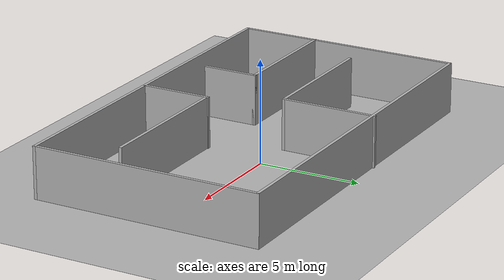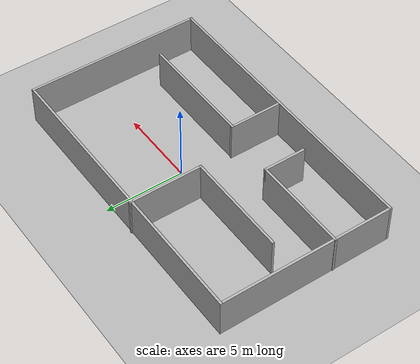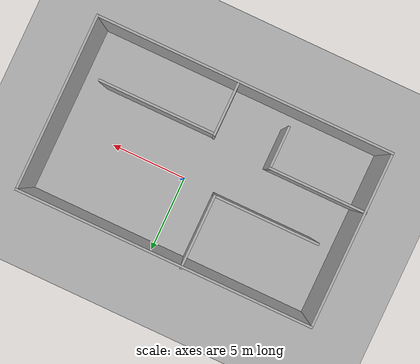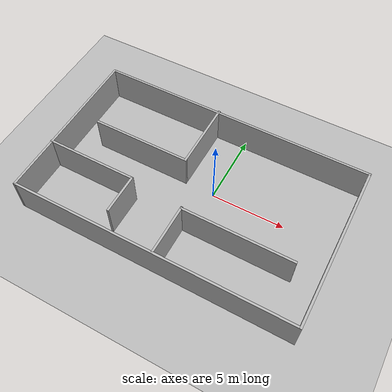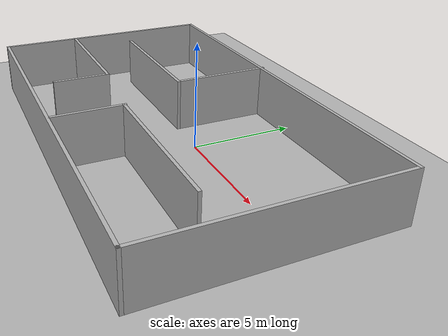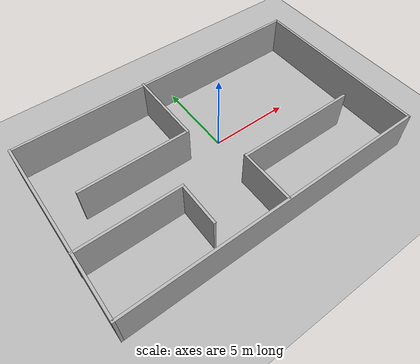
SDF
<sdf version='1.8'>
  <world name='default'>
    <light name='sun' type='directional'>
      <cast_shadows>1</cast_shadows>
      <pose>0 0 10 0 -0 0</pose>
      <diffuse>0.8 0.8 0.8 1</diffuse>
      <specular>0.2 0.2 0.2 1</specular>
      <attenuation>
        <range>1000</range>
        <constant>0.9</constant>
        <linear>0.01</linear>
        <quadratic>0.001</quadratic>
      </attenuation>
      <direction>-0.5 0.1 -0.9</direction>
      <spot>
        <inner_angle>0</inner_angle>
        <outer_angle>0</outer_angle>
        <falloff>0</falloff>
      </spot>
    </light>
    <model name='ground_plane'>
      <static>1</static>
      <link name='link'>
        <collision name='collision'>
          <geometry>
            <plane>
              <normal>0 0 1</normal>
              <size>100 100</size>
            </plane>
          </geometry>
          <surface>
            <friction>
              <ode>
                <mu>100</mu>
                <mu2>50</mu2>
              </ode>
              <torsional>
                <ode/>
              </torsional>
            </friction>
            <contact>
              <ode/>
            </contact>
            <bounce/>
          </surface>
          <max_contacts>10</max_contacts>
        </collision>
        <visual name='visual'>
          <cast_shadows>0</cast_shadows>
          <geometry>
            <plane>
              <normal>0 0 1</normal>
              <size>100 100</size>
            </plane>
          </geometry>
          <material>
            <ambient>0.3 0.3 0.3 1</ambient>
            <diffuse>0.7 0.7 0.7 1</diffuse>
            <specular>0.1 0.1 0.1 1</specular>
          </material>
        </visual>
        <self_collide>0</self_collide>
        <enable_wind>0</enable_wind>
        <kinematic>0</kinematic>
      </link>
    </model>
    <gravity>0 0 -9.8</gravity>
    <magnetic_field>6e-06 2.3e-05 -4.2e-05</magnetic_field>
    <atmosphere type='adiabatic'/>
    <physics type='ode'>
      <max_step_size>0.001</max_step_size>
      <real_time_factor>1</real_time_factor>
      <real_time_update_rate>1000</real_time_update_rate>
    </physics>
    <scene>
      <ambient>0.4 0.4 0.4 1</ambient>
      <background>0.7 0.7 0.7 1</background>
      <shadows>1</shadows>
      <render_engine>ogre2</render_engine>
    </scene>
    <audio>
      <device>default</device>
    </audio>
    <wind/>
    <spherical_coordinates>
      <surface_model>EARTH_WGS84</surface_model>
      <latitude_deg>0</latitude_deg>
      <longitude_deg>0</longitude_deg>
      <elevation>0</elevation>
      <heading_deg>0</heading_deg>
    </spherical_coordinates>
    <model name='room'>
      <pose>-0.972666 -0.903877 0 0 -0 0</pose>
      <link name='Wall_66'>
        <collision name='Wall_66_Collision'>
          <geometry>
            <box>
              <size>19 0.15 2.5</size>
            </box>
          </geometry>
          <pose>0 0 1.25 0 -0 0</pose>
          <max_contacts>10</max_contacts>
          <surface>
            <contact>
              <ode/>
            </contact>
            <bounce/>
            <friction>
              <torsional>
                <ode/>
              </torsional>
              <ode/>
            </friction>
          </surface>
        </collision>
        <visual name='Wall_66_Visual'>
          <pose>0 0 1.25 0 -0 0</pose>
          <geometry>
            <box>
              <size>19 0.15 2.5</size>
            </box>
          </geometry>
          <material>
            <ambient>0.3 0.3 0.3 1</ambient>
            <diffuse>0.7 0.7 0.7 1</diffuse>
            <specular>0.1 0.1 0.1 1</specular>
            <ambient>1 1 1 1</ambient>
          </material>
          <meta>
            <layer>0</layer>
          </meta>
        </visual>
        <pose>0.013921 5.50955 0 0 -0 0</pose>
        <self_collide>0</self_collide>
        <enable_wind>0</enable_wind>
        <kinematic>0</kinematic>
      </link>
      <link name='Wall_67'>
        <collision name='Wall_67_Collision'>
          <geometry>
            <box>
              <size>11.25 0.15 2.5</size>
            </box>
          </geometry>
          <pose>0 0 1.25 0 -0 0</pose>
          <max_contacts>10</max_contacts>
          <surface>
            <contact>
              <ode/>
            </contact>
            <bounce/>
            <friction>
              <torsional>
                <ode/>
              </torsional>
              <ode/>
            </friction>
          </surface>
        </collision>
        <visual name='Wall_67_Visual'>
          <pose>0 0 1.25 0 -0 0</pose>
          <geometry>
            <box>
              <size>11.25 0.15 2.5</size>
            </box>
          </geometry>
          <material>
            <ambient>0.3 0.3 0.3 1</ambient>
            <diffuse>0.7 0.7 0.7 1</diffuse>
            <specular>0.1 0.1 0.1 1</specular>
            <ambient>1 1 1 1</ambient>
          </material>
          <meta>
            <layer>0</layer>
          </meta>
        </visual>
        <pose>9.43892 -0.040455 0 0 -0 -1.5708</pose>
        <self_collide>0</self_collide>
        <enable_wind>0</enable_wind>
        <kinematic>0</kinematic>
      </link>
      <link name='Wall_68'>
        <collision name='Wall_68_Collision'>
          <geometry>
            <box>
              <size>19 0.15 2.5</size>
            </box>
          </geometry>
          <pose>0 0 1.25 0 -0 0</pose>
          <max_contacts>10</max_contacts>
          <surface>
            <contact>
              <ode/>
            </contact>
            <bounce/>
            <friction>
              <torsional>
                <ode/>
              </torsional>
              <ode/>
            </friction>
          </surface>
        </collision>
        <visual name='Wall_68_Visual'>
          <pose>0 0 1.25 0 -0 0</pose>
          <geometry>
            <box>
              <size>19 0.15 2.5</size>
            </box>
          </geometry>
          <material>
            <ambient>0.3 0.3 0.3 1</ambient>
            <diffuse>0.7 0.7 0.7 1</diffuse>
            <specular>0.1 0.1 0.1 1</specular>
            <ambient>1 1 1 1</ambient>
          </material>
          <meta>
            <layer>0</layer>
          </meta>
        </visual>
        <pose>0.013921 -5.59046 0 0 -0 3.14159</pose>
        <self_collide>0</self_collide>
        <enable_wind>0</enable_wind>
        <kinematic>0</kinematic>
      </link>
      <link name='Wall_69'>
        <collision name='Wall_69_Collision'>
          <geometry>
            <box>
              <size>11.25 0.15 2.5</size>
            </box>
          </geometry>
          <pose>0 0 1.25 0 -0 0</pose>
          <max_contacts>10</max_contacts>
          <surface>
            <contact>
              <ode/>
            </contact>
            <bounce/>
            <friction>
              <torsional>
                <ode/>
              </torsional>
              <ode/>
            </friction>
          </surface>
        </collision>
        <visual name='Wall_69_Visual'>
          <pose>0 0 1.25 0 -0 0</pose>
          <geometry>
            <box>
              <size>11.25 0.15 2.5</size>
            </box>
          </geometry>
          <material>
            <ambient>0.3 0.3 0.3 1</ambient>
            <diffuse>0.7 0.7 0.7 1</diffuse>
            <specular>0.1 0.1 0.1 1</specular>
            <ambient>1 1 1 1</ambient>
          </material>
          <meta>
            <layer>0</layer>
          </meta>
        </visual>
        <pose>-9.41108 -0.040455 0 0 -0 1.5708</pose>
        <self_collide>0</self_collide>
        <enable_wind>0</enable_wind>
        <kinematic>0</kinematic>
      </link>
      <link name='Wall_71'>
        <collision name='Wall_71_Collision'>
          <geometry>
            <box>
              <size>4.75 0.15 2.5</size>
            </box>
          </geometry>
          <pose>0 0 1.25 0 -0 0</pose>
          <max_contacts>10</max_contacts>
          <surface>
            <contact>
              <ode/>
            </contact>
            <bounce/>
            <friction>
              <torsional>
                <ode/>
              </torsional>
              <ode/>
            </friction>
          </surface>
        </collision>
        <visual name='Wall_71_Visual'>
          <pose>0 0 1.25 0 -0 0</pose>
          <geometry>
            <box>
              <size>4.75 0.15 2.5</size>
            </box>
          </geometry>
          <material>
            <ambient>0.3 0.3 0.3 1</ambient>
            <diffuse>0.7 0.7 0.7 1</diffuse>
            <specular>0.1 0.1 0.1 1</specular>
            <ambient>1 1 1 1</ambient>
          </material>
          <meta>
            <layer>0</layer>
          </meta>
        </visual>
        <pose>-1.11769 3.29046 0 0 -0 -1.5708</pose>
        <self_collide>0</self_collide>
        <enable_wind>0</enable_wind>
        <kinematic>0</kinematic>
      </link>
      <link name='Wall_72'>
        <collision name='Wall_72_Collision'>
          <geometry>
            <box>
              <size>6.75 0.15 2.5</size>
            </box>
          </geometry>
          <pose>0 0 1.25 0 -0 0</pose>
          <max_contacts>10</max_contacts>
          <surface>
            <contact>
              <ode/>
            </contact>
            <bounce/>
            <friction>
              <torsional>
                <ode/>
              </torsional>
              <ode/>
            </friction>
          </surface>
        </collision>
        <visual name='Wall_72_Visual'>
          <pose>0 0 1.25 0 -0 0</pose>
          <geometry>
            <box>
              <size>6.75 0.15 2.5</size>
            </box>
          </geometry>
          <material>
            <ambient>0.3 0.3 0.3 1</ambient>
            <diffuse>0.7 0.7 0.7 1</diffuse>
            <specular>0.1 0.1 0.1 1</specular>
            <ambient>1 1 1 1</ambient>
          </material>
          <meta>
            <layer>0</layer>
          </meta>
        </visual>
        <pose>-4.41769 0.990456 0 0 -0 3.14159</pose>
        <self_collide>0</self_collide>
        <enable_wind>0</enable_wind>
        <kinematic>0</kinematic>
      </link>
      <link name='Wall_79'>
        <collision name='Wall_79_Collision'>
          <geometry>
            <box>
              <size>3.47722 0.15 2.5</size>
            </box>
          </geometry>
          <pose>0 0 1.25 0 -0 0</pose>
          <max_contacts>10</max_contacts>
          <surface>
            <contact>
              <ode/>
            </contact>
            <bounce/>
            <friction>
              <torsional>
                <ode/>
              </torsional>
              <ode/>
            </friction>
          </surface>
        </collision>
        <visual name='Wall_79_Visual'>
          <pose>0 0 1.25 0 -0 0</pose>
          <geometry>
            <box>
              <size>3.47722 0.15 2.5</size>
            </box>
          </geometry>
          <material>
            <ambient>0.3 0.3 0.3 1</ambient>
            <diffuse>0.7 0.7 0.7 1</diffuse>
            <specular>0.1 0.1 0.1 1</specular>
            <ambient>1 1 1 1</ambient>
          </material>
          <meta>
            <layer>0</layer>
          </meta>
        </visual>
        <pose>0.391784 -3.86799 0 0 -0 1.5708</pose>
        <self_collide>0</self_collide>
        <enable_wind>0</enable_wind>
        <kinematic>0</kinematic>
      </link>
      <link name='Wall_80'>
        <collision name='Wall_80_Collision'>
          <geometry>
            <box>
              <size>7.5 0.15 2.5</size>
            </box>
          </geometry>
          <pose>0 0 1.25 0 -0 0</pose>
          <max_contacts>10</max_contacts>
          <surface>
            <contact>
              <ode/>
            </contact>
            <bounce/>
            <friction>
              <torsional>
                <ode/>
              </torsional>
              <ode/>
            </friction>
          </surface>
        </collision>
        <visual name='Wall_80_Visual'>
          <pose>0 0 1.25 0 -0 0</pose>
          <geometry>
            <box>
              <size>7.5 0.15 2.5</size>
            </box>
          </geometry>
          <material>
            <ambient>0.3 0.3 0.3 1</ambient>
            <diffuse>0.7 0.7 0.7 1</diffuse>
            <specular>0.1 0.1 0.1 1</specular>
            <ambient>1 1 1 1</ambient>
          </material>
          <meta>
            <layer>0</layer>
          </meta>
        </visual>
        <pose>4.06678 -2.24484 0 0 -0 0</pose>
        <self_collide>0</self_collide>
        <enable_wind>0</enable_wind>
        <kinematic>0</kinematic>
      </link>
      <link name='Wall_85'>
        <collision name='Wall_85_Collision'>
          <geometry>
            <box>
              <size>6.25 0.15 2.5</size>
            </box>
          </geometry>
          <pose>0 0 1.25 0 -0 0</pose>
          <max_contacts>10</max_contacts>
          <surface>
            <contact>
              <ode/>
            </contact>
            <bounce/>
            <friction>
              <torsional>
                <ode/>
              </torsional>
              <ode/>
            </friction>
          </surface>
        </collision>
        <visual name='Wall_85_Visual'>
          <pose>0 0 1.25 0 -0 0</pose>
          <geometry>
            <box>
              <size>6.25 0.15 2.5</size>
            </box>
          </geometry>
          <material>
            <ambient>0.3 0.3 0.3 1</ambient>
            <diffuse>0.7 0.7 0.7 1</diffuse>
            <specular>0.1 0.1 0.1 1</specular>
            <ambient>1 1 1 1</ambient>
          </material>
          <meta>
            <layer>0</layer>
          </meta>
        </visual>
        <pose>-6.38892 -1.80969 0 0 -0 0</pose>
        <self_collide>0</self_collide>
        <enable_wind>0</enable_wind>
        <kinematic>0</kinematic>
      </link>
      <link name='Wall_86'>
        <collision name='Wall_86_Collision'>
          <geometry>
            <box>
              <size>2.75 0.15 2.5</size>
            </box>
          </geometry>
          <pose>0 0 1.25 0 -0 0</pose>
          <max_contacts>10</max_contacts>
          <surface>
            <contact>
              <ode/>
            </contact>
            <bounce/>
            <friction>
              <torsional>
                <ode/>
              </torsional>
              <ode/>
            </friction>
          </surface>
        </collision>
        <visual name='Wall_86_Visual'>
          <pose>0 0 1.25 0 -0 0</pose>
          <geometry>
            <box>
              <size>2.75 0.15 2.5</size>
            </box>
          </geometry>
          <material>
            <ambient>0.3 0.3 0.3 1</ambient>
            <diffuse>0.7 0.7 0.7 1</diffuse>
            <specular>0.1 0.1 0.1 1</specular>
            <ambient>1 1 1 1</ambient>
          </material>
          <meta>
            <layer>0</layer>
          </meta>
        </visual>
        <pose>-3.33892 -3.10969 0 0 -0 -1.5708</pose>
        <self_collide>0</self_collide>
        <enable_wind>0</enable_wind>
        <kinematic>0</kinematic>
      </link>
      <static>1</static>
    </model>
    <gui fullscreen='0'>
      <camera name='user_camera'>
        <pose>-0.170626 -11.744 24.2897 0 1.1458 1.5962</pose>
        <view_controller>orbit</view_controller>
        <projection_type>perspective</projection_type>
      </camera>
    </gui>
    <plugin
      filename="ignition-gazebo-physics-system"
      name="gz::sim::systems::Physics">
    </plugin>
    <plugin
      filename="ignition-gazebo-user-commands-system"
      name="gz::sim::systems::UserCommands">
    </plugin>
    <plugin
      filename="ignition-gazebo-scene-broadcaster-system"
      name="gz::sim::systems::SceneBroadcaster">
    </plugin>
    <plugin
      filename="ignition-gazebo-contact-system"
      name="gz::sim::systems::Contact">
    </plugin>
    <plugin
      filename="ignition-gazebo-forcetorque-system"
      name="ignition::gazebo::systems::ForceTorque">
    </plugin>
  </world>
</sdf>
